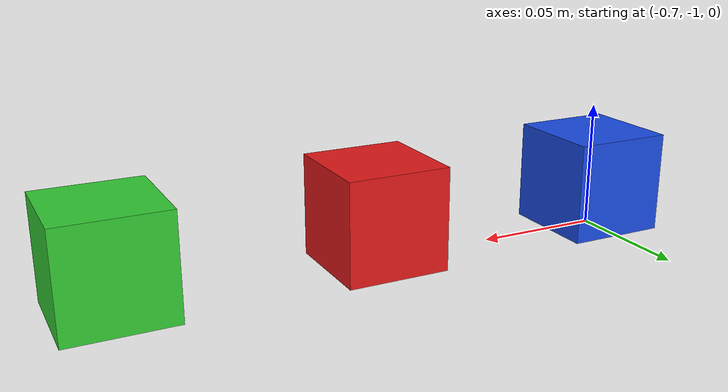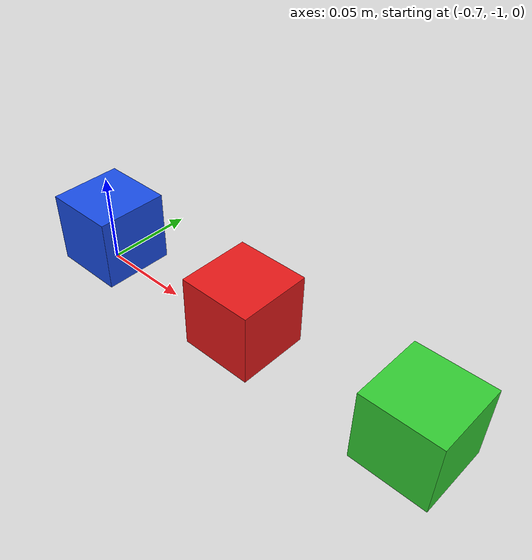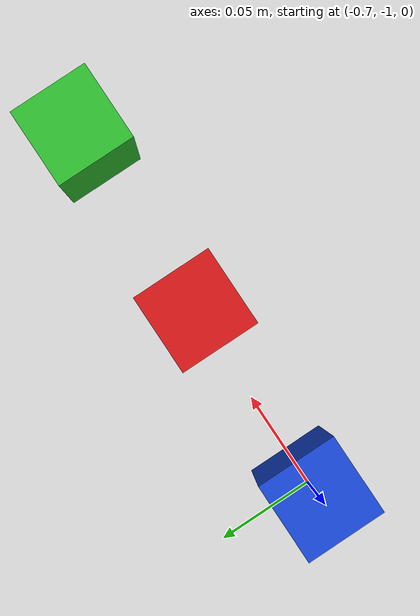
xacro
<?xml version="1.0"?>
<robot xmlns:xacro="http://ros.org/wiki/xacro" name="object_pool">

  <link name="world"/>

  <xacro:macro name="spawn_cube" params="name x y z sx sy sz r g b mass:=0.05">
    <link name="${name}_link">
      <visual>
        <origin xyz="0 0 0" rpy="0 0 0"/>
        <geometry>
          <box size="${sx} ${sy} ${sz}"/>
        </geometry>
        <material name="${name}_color">
          <color rgba="${r} ${g} ${b} 1"/>
        </material>
      </visual>
      <collision>
        <origin xyz="0 0 0" rpy="0 0 0"/>
        <geometry>
          <box size="${sx} ${sy} ${sz}"/>
        </geometry>
      </collision>
      <inertial>
        <mass value="${mass}"/>
        <origin xyz="0 0 0" rpy="0 0 0"/>
        <inertia ixx="${(1.0/12.0)*mass*(sy*sy + sz*sz)}" ixy="0" ixz="0"
                 iyy="${(1.0/12.0)*mass*(sx*sx + sz*sz)}" iyz="0"
                 izz="${(1.0/12.0)*mass*(sx*sx + sy*sy)}"/>
      </inertial>
    </link>

    <joint name="world_to_${name}" type="floating">
      <parent link="world"/>
      <child link="${name}_link"/>
      <origin xyz="${x} ${y} ${z}" rpy="0 0 0"/>
    </joint>

    <mujoco>
      <reference name="${name}_link">
        <geom name="${name}_link_collision_0"
              friction="5.0 2.0 0.2"
              solref="-50000 -500"
              solimp="0.98 0.999 0.0001"
              condim="4"/>
      </reference>
    </mujoco>
  </xacro:macro>

  <!-- ====================== OBJECTS ====================== -->
  <!-- Add / remove / move objects by editing this block.       -->
  <!-- x y z is the spawn pose (world frame); put z = half the  -->
  <!-- sz so the object rests on the floor.                     -->

  <xacro:spawn_cube name="cube_green" x="-0.5" y="-1.0" z="0.02"
                    sx="0.04" sy="0.04" sz="0.04"
                    r="0.2" g="0.8" b="0.2"/>

  <xacro:spawn_cube name="cube_red"   x="-0.6" y="-1.0" z="0.02"
                    sx="0.04" sy="0.04" sz="0.04"
                    r="0.9" g="0.1" b="0.1"/>

  <xacro:spawn_cube name="cube_blue"  x="-0.7" y="-1.0" z="0.02"
                    sx="0.04" sy="0.04" sz="0.04"
                    r="0.1" g="0.3" b="0.9"/>

</robot>
